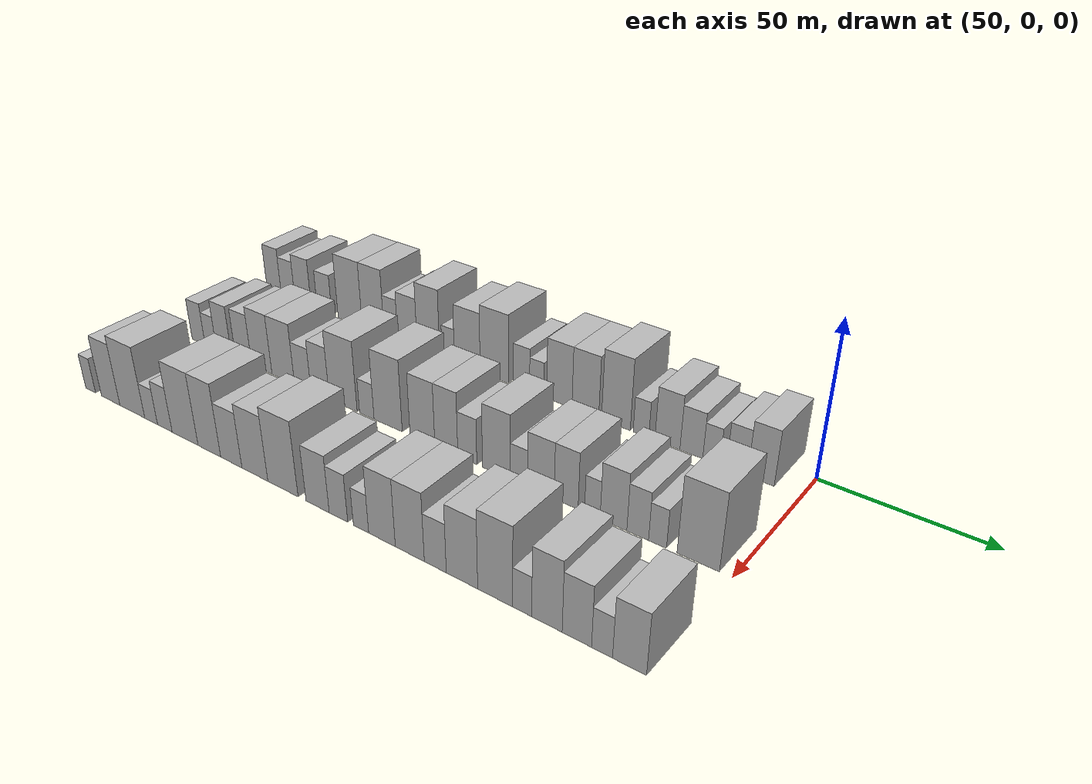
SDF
<sdf version="1.6">
 <world name="default">
  <model name="building_44">
   <static>1</static>
   <pose>50.0000 -202.3479 0 0.000000 0.000000 0.000000</pose>
   <link name="link">
    <pose>0 0 9.00 0 0 0</pose>
    <collision name="collision"><geometry><box><size>20.0000 7.2882 18.0000</size></box></geometry></collision>
    <visual name="visual">
     <cast_shadows>0</cast_shadows>
     <geometry><box><size>20.0000 7.2882 18.0000</size></box></geometry>
     <material>
      <script>
       <uri>model://HANNAS_wall/materials/scripts</uri>
       <uri>model://HANNAS_wall/materials/textures</uri>
       <name>vrc/HANNAS_wall</name>
      </script>
     </material>
    </visual>
   </link>
  </model>
  <model name="building_45">
   <static>1</static>
   <pose>50.0000 -195.2462 0 0.000000 0.000000 0.000000</pose>
   <link name="link">
    <pose>0 0 7.50 0 0 0</pose>
    <collision name="collision"><geometry><box><size>20.0000 6.9153 15.0000</size></box></geometry></collision>
    <visual name="visual">
     <cast_shadows>0</cast_shadows>
     <geometry><box><size>20.0000 6.9153 15.0000</size></box></geometry>
     <material>
      <script>
       <uri>model://HANNAS_wall/materials/scripts</uri>
       <uri>model://HANNAS_wall/materials/textures</uri>
       <name>vrc/HANNAS_wall</name>
      </script>
     </material>
    </visual>
   </link>
  </model>
  <model name="building_46">
   <static>1</static>
   <pose>50.0000 -187.7663 0 0.000000 0.000000 0.000000</pose>
   <link name="link">
    <pose>0 0 9.00 0 0 0</pose>
    <collision name="collision"><geometry><box><size>20.0000 8.0446 18.0000</size></box></geometry></collision>
    <visual name="visual">
     <cast_shadows>0</cast_shadows>
     <geometry><box><size>20.0000 8.0446 18.0000</size></box></geometry>
     <material>
      <script>
       <uri>model://HANNAS_wall/materials/scripts</uri>
       <uri>model://HANNAS_wall/materials/textures</uri>
       <name>vrc/HANNAS_wall</name>
      </script>
     </material>
    </visual>
   </link>
  </model>
  <model name="building_47">
   <static>1</static>
   <pose>50.0000 -177.2297 0 0.000000 0.000000 0.000000</pose>
   <link name="link">
    <pose>0 0 7.50 0 0 0</pose>
    <collision name="collision"><geometry><box><size>20.0000 7.0285 15.0000</size></box></geometry></collision>
    <visual name="visual">
     <cast_shadows>0</cast_shadows>
     <geometry><box><size>20.0000 7.0285 15.0000</size></box></geometry>
     <material>
      <script>
       <uri>model://HANNAS_wall/materials/scripts</uri>
       <uri>model://HANNAS_wall/materials/textures</uri>
       <name>vrc/HANNAS_wall</name>
      </script>
     </material>
    </visual>
   </link>
  </model>
  <model name="building_48">
   <static>1</static>
   <pose>50.0000 -165.0713 0 0.000000 0.000000 0.000000</pose>
   <link name="link">
    <pose>0 0 12.00 0 0 0</pose>
    <collision name="collision"><geometry><box><size>20.0000 11.2883 24.0000</size></box></geometry></collision>
    <visual name="visual">
     <cast_shadows>0</cast_shadows>
     <geometry><box><size>20.0000 11.2883 24.0000</size></box></geometry>
     <material>
      <script>
       <uri>model://HANNAS_wall/materials/scripts</uri>
       <uri>model://HANNAS_wall/materials/textures</uri>
       <name>vrc/HANNAS_wall</name>
      </script>
     </material>
    </visual>
   </link>
  </model>
  <model name="building_49">
   <static>1</static>
   <pose>50.0000 -154.4397 0 0.000000 0.000000 0.000000</pose>
   <link name="link">
    <pose>0 0 12.00 0 0 0</pose>
    <collision name="collision"><geometry><box><size>20.0000 9.9748 24.0000</size></box></geometry></collision>
    <visual name="visual">
     <cast_shadows>0</cast_shadows>
     <geometry><box><size>20.0000 9.9748 24.0000</size></box></geometry>
     <material>
      <script>
       <uri>model://HANNAS_wall/materials/scripts</uri>
       <uri>model://HANNAS_wall/materials/textures</uri>
       <name>vrc/HANNAS_wall</name>
      </script>
     </material>
    </visual>
   </link>
  </model>
  <model name="building_50">
   <static>1</static>
   <pose>50.0000 -146.4189 0 0.000000 0.000000 0.000000</pose>
   <link name="link">
    <pose>0 0 7.50 0 0 0</pose>
    <collision name="collision"><geometry><box><size>20.0000 6.0669 15.0000</size></box></geometry></collision>
    <visual name="visual">
     <cast_shadows>0</cast_shadows>
     <geometry><box><size>20.0000 6.0669 15.0000</size></box></geometry>
     <material>
      <script>
       <uri>model://HANNAS_wall/materials/scripts</uri>
       <uri>model://HANNAS_wall/materials/textures</uri>
       <name>vrc/HANNAS_wall</name>
      </script>
     </material>
    </visual>
   </link>
  </model>
  <model name="building_51">
   <static>1</static>
   <pose>50.0000 -139.1425 0 0.000000 0.000000 0.000000</pose>
   <link name="link">
    <pose>0 0 9.00 0 0 0</pose>
    <collision name="collision"><geometry><box><size>20.0000 8.4860 18.0000</size></box></geometry></collision>
    <visual name="visual">
     <cast_shadows>0</cast_shadows>
     <geometry><box><size>20.0000 8.4860 18.0000</size></box></geometry>
     <material>
      <script>
       <uri>model://HANNAS_wall/materials/scripts</uri>
       <uri>model://HANNAS_wall/materials/textures</uri>
       <name>vrc/HANNAS_wall</name>
      </script>
     </material>
    </visual>
   </link>
  </model>
  <model name="building_52">
   <static>1</static>
   <pose>50.0000 -130.0940 0 0.000000 0.000000 0.000000</pose>
   <link name="link">
    <pose>0 0 12.00 0 0 0</pose>
    <collision name="collision"><geometry><box><size>20.0000 9.6109 24.0000</size></box></geometry></collision>
    <visual name="visual">
     <cast_shadows>0</cast_shadows>
     <geometry><box><size>20.0000 9.6109 24.0000</size></box></geometry>
     <material>
      <script>
       <uri>model://HANNAS_wall/materials/scripts</uri>
       <uri>model://HANNAS_wall/materials/textures</uri>
       <name>vrc/HANNAS_wall</name>
      </script>
     </material>
    </visual>
   </link>
  </model>
  <model name="building_53">
   <static>1</static>
   <pose>50.0000 -121.7255 0 0.000000 0.000000 0.000000</pose>
   <link name="link">
    <pose>0 0 6.00 0 0 0</pose>
    <collision name="collision"><geometry><box><size>20.0000 5.1261 12.0000</size></box></geometry></collision>
    <visual name="visual">
     <cast_shadows>0</cast_shadows>
     <geometry><box><size>20.0000 5.1261 12.0000</size></box></geometry>
     <material>
      <script>
       <uri>model://HANNAS_wall/materials/scripts</uri>
       <uri>model://HANNAS_wall/materials/textures</uri>
       <name>vrc/HANNAS_wall</name>
      </script>
     </material>
    </visual>
   </link>
  </model>
  <model name="building_54">
   <static>1</static>
   <pose>50.0000 -113.9349 0 0.000000 0.000000 0.000000</pose>
   <link name="link">
    <pose>0 0 10.50 0 0 0</pose>
    <collision name="collision"><geometry><box><size>20.0000 10.4553 21.0000</size></box></geometry></collision>
    <visual name="visual">
     <cast_shadows>0</cast_shadows>
     <geometry><box><size>20.0000 10.4553 21.0000</size></box></geometry>
     <material>
      <script>
       <uri>model://HANNAS_wall/materials/scripts</uri>
       <uri>model://HANNAS_wall/materials/textures</uri>
       <name>vrc/HANNAS_wall</name>
      </script>
     </material>
    </visual>
   </link>
  </model>
  <model name="building_55">
   <static>1</static>
   <pose>50.0000 -103.1495 0 0.000000 0.000000 0.000000</pose>
   <link name="link">
    <pose>0 0 12.00 0 0 0</pose>
    <collision name="collision"><geometry><box><size>20.0000 11.1154 24.0000</size></box></geometry></collision>
    <visual name="visual">
     <cast_shadows>0</cast_shadows>
     <geometry><box><size>20.0000 11.1154 24.0000</size></box></geometry>
     <material>
      <script>
       <uri>model://HANNAS_wall/materials/scripts</uri>
       <uri>model://HANNAS_wall/materials/textures</uri>
       <name>vrc/HANNAS_wall</name>
      </script>
     </material>
    </visual>
   </link>
  </model>
  <model name="building_56">
   <static>1</static>
   <pose>50.0000 -92.5312 0 0.000000 0.000000 0.000000</pose>
   <link name="link">
    <pose>0 0 7.50 0 0 0</pose>
    <collision name="collision"><geometry><box><size>20.0000 6.1210 15.0000</size></box></geometry></collision>
    <visual name="visual">
     <cast_shadows>0</cast_shadows>
     <geometry><box><size>20.0000 6.1210 15.0000</size></box></geometry>
     <material>
      <script>
       <uri>model://HANNAS_wall/materials/scripts</uri>
       <uri>model://HANNAS_wall/materials/textures</uri>
       <name>vrc/HANNAS_wall</name>
      </script>
     </material>
    </visual>
   </link>
  </model>
  <model name="building_57">
   <static>1</static>
   <pose>50.0000 -86.7811 0 0.000000 0.000000 0.000000</pose>
   <link name="link">
    <pose>0 0 6.00 0 0 0</pose>
    <collision name="collision"><geometry><box><size>20.0000 5.3792 12.0000</size></box></geometry></collision>
    <visual name="visual">
     <cast_shadows>0</cast_shadows>
     <geometry><box><size>20.0000 5.3792 12.0000</size></box></geometry>
     <material>
      <script>
       <uri>model://HANNAS_wall/materials/scripts</uri>
       <uri>model://HANNAS_wall/materials/textures</uri>
       <name>vrc/HANNAS_wall</name>
      </script>
     </material>
    </visual>
   </link>
  </model>
  <model name="building_58">
   <static>1</static>
   <pose>50.0000 -78.4356 0 0.000000 0.000000 0.000000</pose>
   <link name="link">
    <pose>0 0 10.50 0 0 0</pose>
    <collision name="collision"><geometry><box><size>20.0000 9.3119 21.0000</size></box></geometry></collision>
    <visual name="visual">
     <cast_shadows>0</cast_shadows>
     <geometry><box><size>20.0000 9.3119 21.0000</size></box></geometry>
     <material>
      <script>
       <uri>model://HANNAS_wall/materials/scripts</uri>
       <uri>model://HANNAS_wall/materials/textures</uri>
       <name>vrc/HANNAS_wall</name>
      </script>
     </material>
    </visual>
   </link>
  </model>
  <model name="building_59">
   <static>1</static>
   <pose>50.0000 -69.0138 0 0.000000 0.000000 0.000000</pose>
   <link name="link">
    <pose>0 0 10.50 0 0 0</pose>
    <collision name="collision"><geometry><box><size>20.0000 9.5317 21.0000</size></box></geometry></collision>
    <visual name="visual">
     <cast_shadows>0</cast_shadows>
     <geometry><box><size>20.0000 9.5317 21.0000</size></box></geometry>
     <material>
      <script>
       <uri>model://HANNAS_wall/materials/scripts</uri>
       <uri>model://HANNAS_wall/materials/textures</uri>
       <name>vrc/HANNAS_wall</name>
      </script>
     </material>
    </visual>
   </link>
  </model>
  <model name="building_60">
   <static>1</static>
   <pose>50.0000 -58.2890 0 0.000000 0.000000 0.000000</pose>
   <link name="link">
    <pose>0 0 12.00 0 0 0</pose>
    <collision name="collision"><geometry><box><size>20.0000 9.9177 24.0000</size></box></geometry></collision>
    <visual name="visual">
     <cast_shadows>0</cast_shadows>
     <geometry><box><size>20.0000 9.9177 24.0000</size></box></geometry>
     <material>
      <script>
       <uri>model://HANNAS_wall/materials/scripts</uri>
       <uri>model://HANNAS_wall/materials/textures</uri>
       <name>vrc/HANNAS_wall</name>
      </script>
     </material>
    </visual>
   </link>
  </model>
  <model name="building_61">
   <static>1</static>
   <pose>50.0000 -49.7137 0 0.000000 0.000000 0.000000</pose>
   <link name="link">
    <pose>0 0 6.00 0 0 0</pose>
    <collision name="collision"><geometry><box><size>20.0000 5.2330 12.0000</size></box></geometry></collision>
    <visual name="visual">
     <cast_shadows>0</cast_shadows>
     <geometry><box><size>20.0000 5.2330 12.0000</size></box></geometry>
     <material>
      <script>
       <uri>model://HANNAS_wall/materials/scripts</uri>
       <uri>model://HANNAS_wall/materials/textures</uri>
       <name>vrc/HANNAS_wall</name>
      </script>
     </material>
    </visual>
   </link>
  </model>
  <model name="building_62">
   <static>1</static>
   <pose>50.0000 -40.9994 0 0.000000 0.000000 0.000000</pose>
   <link name="link">
    <pose>0 0 9.00 0 0 0</pose>
    <collision name="collision"><geometry><box><size>20.0000 8.1956 18.0000</size></box></geometry></collision>
    <visual name="visual">
     <cast_shadows>0</cast_shadows>
     <geometry><box><size>20.0000 8.1956 18.0000</size></box></geometry>
     <material>
      <script>
       <uri>model://HANNAS_wall/materials/scripts</uri>
       <uri>model://HANNAS_wall/materials/textures</uri>
       <name>vrc/HANNAS_wall</name>
      </script>
     </material>
    </visual>
   </link>
  </model>
  <model name="building_63">
   <static>1</static>
   <pose>50.0000 -33.2702 0 0.000000 0.000000 0.000000</pose>
   <link name="link">
    <pose>0 0 7.50 0 0 0</pose>
    <collision name="collision"><geometry><box><size>20.0000 7.2627 15.0000</size></box></geometry></collision>
    <visual name="visual">
     <cast_shadows>0</cast_shadows>
     <geometry><box><size>20.0000 7.2627 15.0000</size></box></geometry>
     <material>
      <script>
       <uri>model://HANNAS_wall/materials/scripts</uri>
       <uri>model://HANNAS_wall/materials/textures</uri>
       <name>vrc/HANNAS_wall</name>
      </script>
     </material>
    </visual>
   </link>
  </model>
  <model name="building_64">
   <static>1</static>
   <pose>50.0000 -26.9642 0 0.000000 0.000000 0.000000</pose>
   <link name="link">
    <pose>0 0 6.00 0 0 0</pose>
    <collision name="collision"><geometry><box><size>20.0000 5.3493 12.0000</size></box></geometry></collision>
    <visual name="visual">
     <cast_shadows>0</cast_shadows>
     <geometry><box><size>20.0000 5.3493 12.0000</size></box></geometry>
     <material>
      <script>
       <uri>model://HANNAS_wall/materials/scripts</uri>
       <uri>model://HANNAS_wall/materials/textures</uri>
       <name>vrc/HANNAS_wall</name>
      </script>
     </material>
    </visual>
   </link>
  </model>
  <model name="building_65">
   <static>1</static>
   <pose>50.0000 -19.0683 0 0.000000 0.000000 0.000000</pose>
   <link name="link">
    <pose>0 0 7.50 0 0 0</pose>
    <collision name="collision"><geometry><box><size>20.0000 6.4423 15.0000</size></box></geometry></collision>
    <visual name="visual">
     <cast_shadows>0</cast_shadows>
     <geometry><box><size>20.0000 6.4423 15.0000</size></box></geometry>
     <material>
      <script>
       <uri>model://HANNAS_wall/materials/scripts</uri>
       <uri>model://HANNAS_wall/materials/textures</uri>
       <name>vrc/HANNAS_wall</name>
      </script>
     </material>
    </visual>
   </link>
  </model>
  <model name="building_66">
   <static>1</static>
   <pose>50.0000 -11.8717 0 0.000000 0.000000 0.000000</pose>
   <link name="link">
    <pose>0 0 9.00 0 0 0</pose>
    <collision name="collision"><geometry><box><size>20.0000 7.9509 18.0000</size></box></geometry></collision>
    <visual name="visual">
     <cast_shadows>0</cast_shadows>
     <geometry><box><size>20.0000 7.9509 18.0000</size></box></geometry>
     <material>
      <script>
       <uri>model://HANNAS_wall/materials/scripts</uri>
       <uri>model://HANNAS_wall/materials/textures</uri>
       <name>vrc/HANNAS_wall</name>
      </script>
     </material>
    </visual>
   </link>
  </model>
  <model name="building_185">
   <static>1</static>
   <pose>90.0000 -195.8559 0 0.000000 0.000000 0.000000</pose>
   <link name="link">
    <pose>0 0 7.50 0 0 0</pose>
    <collision name="collision"><geometry><box><size>20.0000 6.4094 15.0000</size></box></geometry></collision>
    <visual name="visual">
     <cast_shadows>0</cast_shadows>
     <geometry><box><size>20.0000 6.4094 15.0000</size></box></geometry>
     <material>
      <script>
       <uri>model://HANNAS_wall/materials/scripts</uri>
       <uri>model://HANNAS_wall/materials/textures</uri>
       <name>vrc/HANNAS_wall</name>
      </script>
     </material>
    </visual>
   </link>
  </model>
  <model name="building_186">
   <static>1</static>
   <pose>90.0000 -189.8173 0 0.000000 0.000000 0.000000</pose>
   <link name="link">
    <pose>0 0 6.00 0 0 0</pose>
    <collision name="collision"><geometry><box><size>20.0000 5.6677 12.0000</size></box></geometry></collision>
    <visual name="visual">
     <cast_shadows>0</cast_shadows>
     <geometry><box><size>20.0000 5.6677 12.0000</size></box></geometry>
     <material>
      <script>
       <uri>model://HANNAS_wall/materials/scripts</uri>
       <uri>model://HANNAS_wall/materials/textures</uri>
       <name>vrc/HANNAS_wall</name>
      </script>
     </material>
    </visual>
   </link>
  </model>
  <model name="building_187">
   <static>1</static>
   <pose>90.0000 -183.3156 0 0.000000 0.000000 0.000000</pose>
   <link name="link">
    <pose>0 0 9.00 0 0 0</pose>
    <collision name="collision"><geometry><box><size>20.0000 7.3358 18.0000</size></box></geometry></collision>
    <visual name="visual">
     <cast_shadows>0</cast_shadows>
     <geometry><box><size>20.0000 7.3358 18.0000</size></box></geometry>
     <material>
      <script>
       <uri>model://HANNAS_wall/materials/scripts</uri>
       <uri>model://HANNAS_wall/materials/textures</uri>
       <name>vrc/HANNAS_wall</name>
      </script>
     </material>
    </visual>
   </link>
  </model>
  <model name="building_188">
   <static>1</static>
   <pose>90.0000 -173.8525 0 0.000000 0.000000 0.000000</pose>
   <link name="link">
    <pose>0 0 9.00 0 0 0</pose>
    <collision name="collision"><geometry><box><size>20.0000 7.5904 18.0000</size></box></geometry></collision>
    <visual name="visual">
     <cast_shadows>0</cast_shadows>
     <geometry><box><size>20.0000 7.5904 18.0000</size></box></geometry>
     <material>
      <script>
       <uri>model://HANNAS_wall/materials/scripts</uri>
       <uri>model://HANNAS_wall/materials/textures</uri>
       <name>vrc/HANNAS_wall</name>
      </script>
     </material>
    </visual>
   </link>
  </model>
  <model name="building_189">
   <static>1</static>
   <pose>90.0000 -165.4227 0 0.000000 0.000000 0.000000</pose>
   <link name="link">
    <pose>0 0 10.50 0 0 0</pose>
    <collision name="collision"><geometry><box><size>20.0000 9.2691 21.0000</size></box></geometry></collision>
    <visual name="visual">
     <cast_shadows>0</cast_shadows>
     <geometry><box><size>20.0000 9.2691 21.0000</size></box></geometry>
     <material>
      <script>
       <uri>model://HANNAS_wall/materials/scripts</uri>
       <uri>model://HANNAS_wall/materials/textures</uri>
       <name>vrc/HANNAS_wall</name>
      </script>
     </material>
    </visual>
   </link>
  </model>
  <model name="building_190">
   <static>1</static>
   <pose>90.0000 -155.7365 0 0.000000 0.000000 0.000000</pose>
   <link name="link">
    <pose>0 0 10.50 0 0 0</pose>
    <collision name="collision"><geometry><box><size>20.0000 10.1032 21.0000</size></box></geometry></collision>
    <visual name="visual">
     <cast_shadows>0</cast_shadows>
     <geometry><box><size>20.0000 10.1032 21.0000</size></box></geometry>
     <material>
      <script>
       <uri>model://HANNAS_wall/materials/scripts</uri>
       <uri>model://HANNAS_wall/materials/textures</uri>
       <name>vrc/HANNAS_wall</name>
      </script>
     </material>
    </visual>
   </link>
  </model>
  <model name="building_191">
   <static>1</static>
   <pose>90.0000 -147.0865 0 0.000000 0.000000 0.000000</pose>
   <link name="link">
    <pose>0 0 7.50 0 0 0</pose>
    <collision name="collision"><geometry><box><size>20.0000 7.1969 15.0000</size></box></geometry></collision>
    <visual name="visual">
     <cast_shadows>0</cast_shadows>
     <geometry><box><size>20.0000 7.1969 15.0000</size></box></geometry>
     <material>
      <script>
       <uri>model://HANNAS_wall/materials/scripts</uri>
       <uri>model://HANNAS_wall/materials/textures</uri>
       <name>vrc/HANNAS_wall</name>
      </script>
     </material>
    </visual>
   </link>
  </model>
  <model name="building_192">
   <static>1</static>
   <pose>90.0000 -139.5694 0 0.000000 0.000000 0.000000</pose>
   <link name="link">
    <pose>0 0 9.00 0 0 0</pose>
    <collision name="collision"><geometry><box><size>20.0000 7.8373 18.0000</size></box></geometry></collision>
    <visual name="visual">
     <cast_shadows>0</cast_shadows>
     <geometry><box><size>20.0000 7.8373 18.0000</size></box></geometry>
     <material>
      <script>
       <uri>model://HANNAS_wall/materials/scripts</uri>
       <uri>model://HANNAS_wall/materials/textures</uri>
       <name>vrc/HANNAS_wall</name>
      </script>
     </material>
    </visual>
   </link>
  </model>
  <model name="building_193">
   <static>1</static>
   <pose>90.0000 -129.8937 0 0.000000 0.000000 0.000000</pose>
   <link name="link">
    <pose>0 0 12.00 0 0 0</pose>
    <collision name="collision"><geometry><box><size>20.0000 11.5139 24.0000</size></box></geometry></collision>
    <visual name="visual">
     <cast_shadows>0</cast_shadows>
     <geometry><box><size>20.0000 11.5139 24.0000</size></box></geometry>
     <material>
      <script>
       <uri>model://HANNAS_wall/materials/scripts</uri>
       <uri>model://HANNAS_wall/materials/textures</uri>
       <name>vrc/HANNAS_wall</name>
      </script>
     </material>
    </visual>
   </link>
  </model>
  <model name="building_194">
   <static>1</static>
   <pose>90.0000 -120.2280 0 0.000000 0.000000 0.000000</pose>
   <link name="link">
    <pose>0 0 6.00 0 0 0</pose>
    <collision name="collision"><geometry><box><size>20.0000 5.8175 12.0000</size></box></geometry></collision>
    <visual name="visual">
     <cast_shadows>0</cast_shadows>
     <geometry><box><size>20.0000 5.8175 12.0000</size></box></geometry>
     <material>
      <script>
       <uri>model://HANNAS_wall/materials/scripts</uri>
       <uri>model://HANNAS_wall/materials/textures</uri>
       <name>vrc/HANNAS_wall</name>
      </script>
     </material>
    </visual>
   </link>
  </model>
  <model name="building_195">
   <static>1</static>
   <pose>90.0000 -111.7917 0 0.000000 0.000000 0.000000</pose>
   <link name="link">
    <pose>0 0 12.00 0 0 0</pose>
    <collision name="collision"><geometry><box><size>20.0000 11.0552 24.0000</size></box></geometry></collision>
    <visual name="visual">
     <cast_shadows>0</cast_shadows>
     <geometry><box><size>20.0000 11.0552 24.0000</size></box></geometry>
     <material>
      <script>
       <uri>model://HANNAS_wall/materials/scripts</uri>
       <uri>model://HANNAS_wall/materials/textures</uri>
       <name>vrc/HANNAS_wall</name>
      </script>
     </material>
    </visual>
   </link>
  </model>
  <model name="building_196">
   <static>1</static>
   <pose>90.0000 -98.5893 0 0.000000 0.000000 0.000000</pose>
   <link name="link">
    <pose>0 0 10.50 0 0 0</pose>
    <collision name="collision"><geometry><box><size>20.0000 9.3495 21.0000</size></box></geometry></collision>
    <visual name="visual">
     <cast_shadows>0</cast_shadows>
     <geometry><box><size>20.0000 9.3495 21.0000</size></box></geometry>
     <material>
      <script>
       <uri>model://HANNAS_wall/materials/scripts</uri>
       <uri>model://HANNAS_wall/materials/textures</uri>
       <name>vrc/HANNAS_wall</name>
      </script>
     </material>
    </visual>
   </link>
  </model>
  <model name="building_197">
   <static>1</static>
   <pose>90.0000 -89.7115 0 0.000000 0.000000 0.000000</pose>
   <link name="link">
    <pose>0 0 10.50 0 0 0</pose>
    <collision name="collision"><geometry><box><size>20.0000 8.4060 21.0000</size></box></geometry></collision>
    <visual name="visual">
     <cast_shadows>0</cast_shadows>
     <geometry><box><size>20.0000 8.4060 21.0000</size></box></geometry>
     <material>
      <script>
       <uri>model://HANNAS_wall/materials/scripts</uri>
       <uri>model://HANNAS_wall/materials/textures</uri>
       <name>vrc/HANNAS_wall</name>
      </script>
     </material>
    </visual>
   </link>
  </model>
  <model name="building_198">
   <static>1</static>
   <pose>90.0000 -82.1200 0 0.000000 0.000000 0.000000</pose>
   <link name="link">
    <pose>0 0 7.50 0 0 0</pose>
    <collision name="collision"><geometry><box><size>20.0000 6.7771 15.0000</size></box></geometry></collision>
    <visual name="visual">
     <cast_shadows>0</cast_shadows>
     <geometry><box><size>20.0000 6.7771 15.0000</size></box></geometry>
     <material>
      <script>
       <uri>model://HANNAS_wall/materials/scripts</uri>
       <uri>model://HANNAS_wall/materials/textures</uri>
       <name>vrc/HANNAS_wall</name>
      </script>
     </material>
    </visual>
   </link>
  </model>
  <model name="building_199">
   <static>1</static>
   <pose>90.0000 -71.8998 0 0.000000 0.000000 0.000000</pose>
   <link name="link">
    <pose>0 0 10.50 0 0 0</pose>
    <collision name="collision"><geometry><box><size>20.0000 9.6631 21.0000</size></box></geometry></collision>
    <visual name="visual">
     <cast_shadows>0</cast_shadows>
     <geometry><box><size>20.0000 9.6631 21.0000</size></box></geometry>
     <material>
      <script>
       <uri>model://HANNAS_wall/materials/scripts</uri>
       <uri>model://HANNAS_wall/materials/textures</uri>
       <name>vrc/HANNAS_wall</name>
      </script>
     </material>
    </visual>
   </link>
  </model>
  <model name="building_200">
   <static>1</static>
   <pose>90.0000 -64.2052 0 0.000000 0.000000 0.000000</pose>
   <link name="link">
    <pose>0 0 6.00 0 0 0</pose>
    <collision name="collision"><geometry><box><size>20.0000 5.7262 12.0000</size></box></geometry></collision>
    <visual name="visual">
     <cast_shadows>0</cast_shadows>
     <geometry><box><size>20.0000 5.7262 12.0000</size></box></geometry>
     <material>
      <script>
       <uri>model://HANNAS_wall/materials/scripts</uri>
       <uri>model://HANNAS_wall/materials/textures</uri>
       <name>vrc/HANNAS_wall</name>
      </script>
     </material>
    </visual>
   </link>
  </model>
  <model name="building_201">
   <static>1</static>
   <pose>90.0000 -56.9753 0 0.000000 0.000000 0.000000</pose>
   <link name="link">
    <pose>0 0 9.00 0 0 0</pose>
    <collision name="collision"><geometry><box><size>20.0000 8.7336 18.0000</size></box></geometry></collision>
    <visual name="visual">
     <cast_shadows>0</cast_shadows>
     <geometry><box><size>20.0000 8.7336 18.0000</size></box></geometry>
     <material>
      <script>
       <uri>model://HANNAS_wall/materials/scripts</uri>
       <uri>model://HANNAS_wall/materials/textures</uri>
       <name>vrc/HANNAS_wall</name>
      </script>
     </material>
    </visual>
   </link>
  </model>
  <model name="building_202">
   <static>1</static>
   <pose>90.0000 -48.7742 0 0.000000 0.000000 0.000000</pose>
   <link name="link">
    <pose>0 0 9.00 0 0 0</pose>
    <collision name="collision"><geometry><box><size>20.0000 7.6685 18.0000</size></box></geometry></collision>
    <visual name="visual">
     <cast_shadows>0</cast_shadows>
     <geometry><box><size>20.0000 7.6685 18.0000</size></box></geometry>
     <material>
      <script>
       <uri>model://HANNAS_wall/materials/scripts</uri>
       <uri>model://HANNAS_wall/materials/textures</uri>
       <name>vrc/HANNAS_wall</name>
      </script>
     </material>
    </visual>
   </link>
  </model>
  <model name="building_203">
   <static>1</static>
   <pose>90.0000 -40.5133 0 0.000000 0.000000 0.000000</pose>
   <link name="link">
    <pose>0 0 6.00 0 0 0</pose>
    <collision name="collision"><geometry><box><size>20.0000 4.8533 12.0000</size></box></geometry></collision>
    <visual name="visual">
     <cast_shadows>0</cast_shadows>
     <geometry><box><size>20.0000 4.8533 12.0000</size></box></geometry>
     <material>
      <script>
       <uri>model://HANNAS_wall/materials/scripts</uri>
       <uri>model://HANNAS_wall/materials/textures</uri>
       <name>vrc/HANNAS_wall</name>
      </script>
     </material>
    </visual>
   </link>
  </model>
  <model name="building_204">
   <static>1</static>
   <pose>90.0000 -34.0254 0 0.000000 0.000000 0.000000</pose>
   <link name="link">
    <pose>0 0 9.00 0 0 0</pose>
    <collision name="collision"><geometry><box><size>20.0000 8.1226 18.0000</size></box></geometry></collision>
    <visual name="visual">
     <cast_shadows>0</cast_shadows>
     <geometry><box><size>20.0000 8.1226 18.0000</size></box></geometry>
     <material>
      <script>
       <uri>model://HANNAS_wall/materials/scripts</uri>
       <uri>model://HANNAS_wall/materials/textures</uri>
       <name>vrc/HANNAS_wall</name>
      </script>
     </material>
    </visual>
   </link>
  </model>
  <model name="building_205">
   <static>1</static>
   <pose>90.0000 -26.7587 0 0.000000 0.000000 0.000000</pose>
   <link name="link">
    <pose>0 0 7.50 0 0 0</pose>
    <collision name="collision"><geometry><box><size>20.0000 6.4108 15.0000</size></box></geometry></collision>
    <visual name="visual">
     <cast_shadows>0</cast_shadows>
     <geometry><box><size>20.0000 6.4108 15.0000</size></box></geometry>
     <material>
      <script>
       <uri>model://HANNAS_wall/materials/scripts</uri>
       <uri>model://HANNAS_wall/materials/textures</uri>
       <name>vrc/HANNAS_wall</name>
      </script>
     </material>
    </visual>
   </link>
  </model>
  <model name="building_206">
   <static>1</static>
   <pose>90.0000 -20.9501 0 0.000000 0.000000 0.000000</pose>
   <link name="link">
    <pose>0 0 6.00 0 0 0</pose>
    <collision name="collision"><geometry><box><size>20.0000 5.2064 12.0000</size></box></geometry></collision>
    <visual name="visual">
     <cast_shadows>0</cast_shadows>
     <geometry><box><size>20.0000 5.2064 12.0000</size></box></geometry>
     <material>
      <script>
       <uri>model://HANNAS_wall/materials/scripts</uri>
       <uri>model://HANNAS_wall/materials/textures</uri>
       <name>vrc/HANNAS_wall</name>
      </script>
     </material>
    </visual>
   </link>
  </model>
  <model name="building_207">
   <static>1</static>
   <pose>90.0000 -9.4413 0 0.000000 0.000000 0.000000</pose>
   <link name="link">
    <pose>0 0 12.00 0 0 0</pose>
    <collision name="collision"><geometry><box><size>20.0000 11.8111 24.0000</size></box></geometry></collision>
    <visual name="visual">
     <cast_shadows>0</cast_shadows>
     <geometry><box><size>20.0000 11.8111 24.0000</size></box></geometry>
     <material>
      <script>
       <uri>model://HANNAS_wall/materials/scripts</uri>
       <uri>model://HANNAS_wall/materials/textures</uri>
       <name>vrc/HANNAS_wall</name>
      </script>
     </material>
    </visual>
   </link>
  </model>
  <model name="building_323">
   <static>1</static>
   <pose>130.0000 -198.5593 0 0.000000 0.000000 0.000000</pose>
   <link name="link">
    <pose>0 0 6.00 0 0 0</pose>
    <collision name="collision"><geometry><box><size>20.0000 4.9016 12.0000</size></box></geometry></collision>
    <visual name="visual">
     <cast_shadows>0</cast_shadows>
     <geometry><box><size>20.0000 4.9016 12.0000</size></box></geometry>
     <material>
      <script>
       <uri>model://HANNAS_wall/materials/scripts</uri>
       <uri>model://HANNAS_wall/materials/textures</uri>
       <name>vrc/HANNAS_wall</name>
      </script>
     </material>
    </visual>
   </link>
  </model>
  <model name="building_324">
   <static>1</static>
   <pose>130.0000 -188.6120 0 0.000000 0.000000 0.000000</pose>
   <link name="link">
    <pose>0 0 10.50 0 0 0</pose>
    <collision name="collision"><geometry><box><size>20.0000 8.9930 21.0000</size></box></geometry></collision>
    <visual name="visual">
     <cast_shadows>0</cast_shadows>
     <geometry><box><size>20.0000 8.9930 21.0000</size></box></geometry>
     <material>
      <script>
       <uri>model://HANNAS_wall/materials/scripts</uri>
       <uri>model://HANNAS_wall/materials/textures</uri>
       <name>vrc/HANNAS_wall</name>
      </script>
     </material>
    </visual>
   </link>
  </model>
  <model name="building_325">
   <static>1</static>
   <pose>130.0000 -178.2309 0 0.000000 0.000000 0.000000</pose>
   <link name="link">
    <pose>0 0 12.00 0 0 0</pose>
    <collision name="collision"><geometry><box><size>20.0000 11.7692 24.0000</size></box></geometry></collision>
    <visual name="visual">
     <cast_shadows>0</cast_shadows>
     <geometry><box><size>20.0000 11.7692 24.0000</size></box></geometry>
     <material>
      <script>
       <uri>model://HANNAS_wall/materials/scripts</uri>
       <uri>model://HANNAS_wall/materials/textures</uri>
       <name>vrc/HANNAS_wall</name>
      </script>
     </material>
    </visual>
   </link>
  </model>
  <model name="building_326">
   <static>1</static>
   <pose>130.0000 -169.3851 0 0.000000 0.000000 0.000000</pose>
   <link name="link">
    <pose>0 0 6.00 0 0 0</pose>
    <collision name="collision"><geometry><box><size>20.0000 5.9225 12.0000</size></box></geometry></collision>
    <visual name="visual">
     <cast_shadows>0</cast_shadows>
     <geometry><box><size>20.0000 5.9225 12.0000</size></box></geometry>
     <material>
      <script>
       <uri>model://HANNAS_wall/materials/scripts</uri>
       <uri>model://HANNAS_wall/materials/textures</uri>
       <name>vrc/HANNAS_wall</name>
      </script>
     </material>
    </visual>
   </link>
  </model>
  <model name="building_327">
   <static>1</static>
   <pose>130.0000 -163.1254 0 0.000000 0.000000 0.000000</pose>
   <link name="link">
    <pose>0 0 7.50 0 0 0</pose>
    <collision name="collision"><geometry><box><size>20.0000 6.5968 15.0000</size></box></geometry></collision>
    <visual name="visual">
     <cast_shadows>0</cast_shadows>
     <geometry><box><size>20.0000 6.5968 15.0000</size></box></geometry>
     <material>
      <script>
       <uri>model://HANNAS_wall/materials/scripts</uri>
       <uri>model://HANNAS_wall/materials/textures</uri>
       <name>vrc/HANNAS_wall</name>
      </script>
     </material>
    </visual>
   </link>
  </model>
  <model name="building_328">
   <static>1</static>
   <pose>130.0000 -154.1290 0 0.000000 0.000000 0.000000</pose>
   <link name="link">
    <pose>0 0 12.00 0 0 0</pose>
    <collision name="collision"><geometry><box><size>20.0000 11.3960 24.0000</size></box></geometry></collision>
    <visual name="visual">
     <cast_shadows>0</cast_shadows>
     <geometry><box><size>20.0000 11.3960 24.0000</size></box></geometry>
     <material>
      <script>
       <uri>model://HANNAS_wall/materials/scripts</uri>
       <uri>model://HANNAS_wall/materials/textures</uri>
       <name>vrc/HANNAS_wall</name>
      </script>
     </material>
    </visual>
   </link>
  </model>
  <model name="building_329">
   <static>1</static>
   <pose>130.0000 -143.6059 0 0.000000 0.000000 0.000000</pose>
   <link name="link">
    <pose>0 0 12.00 0 0 0</pose>
    <collision name="collision"><geometry><box><size>20.0000 9.6503 24.0000</size></box></geometry></collision>
    <visual name="visual">
     <cast_shadows>0</cast_shadows>
     <geometry><box><size>20.0000 9.6503 24.0000</size></box></geometry>
     <material>
      <script>
       <uri>model://HANNAS_wall/materials/scripts</uri>
       <uri>model://HANNAS_wall/materials/textures</uri>
       <name>vrc/HANNAS_wall</name>
      </script>
     </material>
    </visual>
   </link>
  </model>
  <model name="building_330">
   <static>1</static>
   <pose>130.0000 -134.3958 0 0.000000 0.000000 0.000000</pose>
   <link name="link">
    <pose>0 0 9.00 0 0 0</pose>
    <collision name="collision"><geometry><box><size>20.0000 8.7698 18.0000</size></box></geometry></collision>
    <visual name="visual">
     <cast_shadows>0</cast_shadows>
     <geometry><box><size>20.0000 8.7698 18.0000</size></box></geometry>
     <material>
      <script>
       <uri>model://HANNAS_wall/materials/scripts</uri>
       <uri>model://HANNAS_wall/materials/textures</uri>
       <name>vrc/HANNAS_wall</name>
      </script>
     </material>
    </visual>
   </link>
  </model>
  <model name="building_331">
   <static>1</static>
   <pose>130.0000 -124.8278 0 0.000000 0.000000 0.000000</pose>
   <link name="link">
    <pose>0 0 10.50 0 0 0</pose>
    <collision name="collision"><geometry><box><size>20.0000 10.3663 21.0000</size></box></geometry></collision>
    <visual name="visual">
     <cast_shadows>0</cast_shadows>
     <geometry><box><size>20.0000 10.3663 21.0000</size></box></geometry>
     <material>
      <script>
       <uri>model://HANNAS_wall/materials/scripts</uri>
       <uri>model://HANNAS_wall/materials/textures</uri>
       <name>vrc/HANNAS_wall</name>
      </script>
     </material>
    </visual>
   </link>
  </model>
  <model name="building_332">
   <static>1</static>
   <pose>130.0000 -113.8244 0 0.000000 0.000000 0.000000</pose>
   <link name="link">
    <pose>0 0 12.00 0 0 0</pose>
    <collision name="collision"><geometry><box><size>20.0000 11.6403 24.0000</size></box></geometry></collision>
    <visual name="visual">
     <cast_shadows>0</cast_shadows>
     <geometry><box><size>20.0000 11.6403 24.0000</size></box></geometry>
     <material>
      <script>
       <uri>model://HANNAS_wall/materials/scripts</uri>
       <uri>model://HANNAS_wall/materials/textures</uri>
       <name>vrc/HANNAS_wall</name>
      </script>
     </material>
    </visual>
   </link>
  </model>
  <model name="building_333">
   <static>1</static>
   <pose>130.0000 -100.7300 0 0.000000 0.000000 0.000000</pose>
   <link name="link">
    <pose>0 0 9.00 0 0 0</pose>
    <collision name="collision"><geometry><box><size>20.0000 8.5486 18.0000</size></box></geometry></collision>
    <visual name="visual">
     <cast_shadows>0</cast_shadows>
     <geometry><box><size>20.0000 8.5486 18.0000</size></box></geometry>
     <material>
      <script>
       <uri>model://HANNAS_wall/materials/scripts</uri>
       <uri>model://HANNAS_wall/materials/textures</uri>
       <name>vrc/HANNAS_wall</name>
      </script>
     </material>
    </visual>
   </link>
  </model>
  <model name="building_334">
   <static>1</static>
   <pose>130.0000 -93.1332 0 0.000000 0.000000 0.000000</pose>
   <link name="link">
    <pose>0 0 7.50 0 0 0</pose>
    <collision name="collision"><geometry><box><size>20.0000 6.6448 15.0000</size></box></geometry></collision>
    <visual name="visual">
     <cast_shadows>0</cast_shadows>
     <geometry><box><size>20.0000 6.6448 15.0000</size></box></geometry>
     <material>
      <script>
       <uri>model://HANNAS_wall/materials/scripts</uri>
       <uri>model://HANNAS_wall/materials/textures</uri>
       <name>vrc/HANNAS_wall</name>
      </script>
     </material>
    </visual>
   </link>
  </model>
  <model name="building_335">
   <static>1</static>
   <pose>130.0000 -85.1421 0 0.000000 0.000000 0.000000</pose>
   <link name="link">
    <pose>0 0 6.00 0 0 0</pose>
    <collision name="collision"><geometry><box><size>20.0000 5.3374 12.0000</size></box></geometry></collision>
    <visual name="visual">
     <cast_shadows>0</cast_shadows>
     <geometry><box><size>20.0000 5.3374 12.0000</size></box></geometry>
     <material>
      <script>
       <uri>model://HANNAS_wall/materials/scripts</uri>
       <uri>model://HANNAS_wall/materials/textures</uri>
       <name>vrc/HANNAS_wall</name>
      </script>
     </material>
    </visual>
   </link>
  </model>
  <model name="building_336">
   <static>1</static>
   <pose>130.0000 -77.9403 0 0.000000 0.000000 0.000000</pose>
   <link name="link">
    <pose>0 0 10.50 0 0 0</pose>
    <collision name="collision"><geometry><box><size>20.0000 9.0662 21.0000</size></box></geometry></collision>
    <visual name="visual">
     <cast_shadows>0</cast_shadows>
     <geometry><box><size>20.0000 9.0662 21.0000</size></box></geometry>
     <material>
      <script>
       <uri>model://HANNAS_wall/materials/scripts</uri>
       <uri>model://HANNAS_wall/materials/textures</uri>
       <name>vrc/HANNAS_wall</name>
      </script>
     </material>
    </visual>
   </link>
  </model>
  <model name="building_337">
   <static>1</static>
   <pose>130.0000 -68.6315 0 0.000000 0.000000 0.000000</pose>
   <link name="link">
    <pose>0 0 10.50 0 0 0</pose>
    <collision name="collision"><geometry><box><size>20.0000 9.5514 21.0000</size></box></geometry></collision>
    <visual name="visual">
     <cast_shadows>0</cast_shadows>
     <geometry><box><size>20.0000 9.5514 21.0000</size></box></geometry>
     <material>
      <script>
       <uri>model://HANNAS_wall/materials/scripts</uri>
       <uri>model://HANNAS_wall/materials/textures</uri>
       <name>vrc/HANNAS_wall</name>
      </script>
     </material>
    </visual>
   </link>
  </model>
  <model name="building_338">
   <static>1</static>
   <pose>130.0000 -60.3538 0 0.000000 0.000000 0.000000</pose>
   <link name="link">
    <pose>0 0 7.50 0 0 0</pose>
    <collision name="collision"><geometry><box><size>20.0000 7.0039 15.0000</size></box></geometry></collision>
    <visual name="visual">
     <cast_shadows>0</cast_shadows>
     <geometry><box><size>20.0000 7.0039 15.0000</size></box></geometry>
     <material>
      <script>
       <uri>model://HANNAS_wall/materials/scripts</uri>
       <uri>model://HANNAS_wall/materials/textures</uri>
       <name>vrc/HANNAS_wall</name>
      </script>
     </material>
    </visual>
   </link>
  </model>
  <model name="building_339">
   <static>1</static>
   <pose>130.0000 -52.0006 0 0.000000 0.000000 0.000000</pose>
   <link name="link">
    <pose>0 0 10.50 0 0 0</pose>
    <collision name="collision"><geometry><box><size>20.0000 9.7025 21.0000</size></box></geometry></collision>
    <visual name="visual">
     <cast_shadows>0</cast_shadows>
     <geometry><box><size>20.0000 9.7025 21.0000</size></box></geometry>
     <material>
      <script>
       <uri>model://HANNAS_wall/materials/scripts</uri>
       <uri>model://HANNAS_wall/materials/textures</uri>
       <name>vrc/HANNAS_wall</name>
      </script>
     </material>
    </visual>
   </link>
  </model>
  <model name="building_340">
   <static>1</static>
   <pose>130.0000 -41.9264 0 0.000000 0.000000 0.000000</pose>
   <link name="link">
    <pose>0 0 12.00 0 0 0</pose>
    <collision name="collision"><geometry><box><size>20.0000 10.4460 24.0000</size></box></geometry></collision>
    <visual name="visual">
     <cast_shadows>0</cast_shadows>
     <geometry><box><size>20.0000 10.4460 24.0000</size></box></geometry>
     <material>
      <script>
       <uri>model://HANNAS_wall/materials/scripts</uri>
       <uri>model://HANNAS_wall/materials/textures</uri>
       <name>vrc/HANNAS_wall</name>
      </script>
     </material>
    </visual>
   </link>
  </model>
  <model name="building_341">
   <static>1</static>
   <pose>130.0000 -33.9825 0 0.000000 0.000000 0.000000</pose>
   <link name="link">
    <pose>0 0 6.00 0 0 0</pose>
    <collision name="collision"><geometry><box><size>20.0000 5.4418 12.0000</size></box></geometry></collision>
    <visual name="visual">
     <cast_shadows>0</cast_shadows>
     <geometry><box><size>20.0000 5.4418 12.0000</size></box></geometry>
     <material>
      <script>
       <uri>model://HANNAS_wall/materials/scripts</uri>
       <uri>model://HANNAS_wall/materials/textures</uri>
       <name>vrc/HANNAS_wall</name>
      </script>
     </material>
    </visual>
   </link>
  </model>
  <model name="building_342">
   <static>1</static>
   <pose>130.0000 -26.9742 0 0.000000 0.000000 0.000000</pose>
   <link name="link">
    <pose>0 0 10.50 0 0 0</pose>
    <collision name="collision"><geometry><box><size>20.0000 8.5747 21.0000</size></box></geometry></collision>
    <visual name="visual">
     <cast_shadows>0</cast_shadows>
     <geometry><box><size>20.0000 8.5747 21.0000</size></box></geometry>
     <material>
      <script>
       <uri>model://HANNAS_wall/materials/scripts</uri>
       <uri>model://HANNAS_wall/materials/textures</uri>
       <name>vrc/HANNAS_wall</name>
      </script>
     </material>
    </visual>
   </link>
  </model>
  <model name="building_343">
   <static>1</static>
   <pose>130.0000 -18.7017 0 0.000000 0.000000 0.000000</pose>
   <link name="link">
    <pose>0 0 9.00 0 0 0</pose>
    <collision name="collision"><geometry><box><size>20.0000 7.9704 18.0000</size></box></geometry></collision>
    <visual name="visual">
     <cast_shadows>0</cast_shadows>
     <geometry><box><size>20.0000 7.9704 18.0000</size></box></geometry>
     <material>
      <script>
       <uri>model://HANNAS_wall/materials/scripts</uri>
       <uri>model://HANNAS_wall/materials/textures</uri>
       <name>vrc/HANNAS_wall</name>
      </script>
     </material>
    </visual>
   </link>
  </model>
  <model name="building_344">
   <static>1</static>
   <pose>130.0000 -11.9334 0 0.000000 0.000000 0.000000</pose>
   <link name="link">
    <pose>0 0 6.00 0 0 0</pose>
    <collision name="collision"><geometry><box><size>20.0000 5.5663 12.0000</size></box></geometry></collision>
    <visual name="visual">
     <cast_shadows>0</cast_shadows>
     <geometry><box><size>20.0000 5.5663 12.0000</size></box></geometry>
     <material>
      <script>
       <uri>model://HANNAS_wall/materials/scripts</uri>
       <uri>model://HANNAS_wall/materials/textures</uri>
       <name>vrc/HANNAS_wall</name>
      </script>
     </material>
    </visual>
   </link>
  </model>
  <model name="building_345">
   <static>1</static>
   <pose>130.0000 -4.7817 0 0.000000 0.000000 0.000000</pose>
   <link name="link">
    <pose>0 0 9.00 0 0 0</pose>
    <collision name="collision"><geometry><box><size>20.0000 8.7371 18.0000</size></box></geometry></collision>
    <visual name="visual">
     <cast_shadows>0</cast_shadows>
     <geometry><box><size>20.0000 8.7371 18.0000</size></box></geometry>
     <material>
      <script>
       <uri>model://HANNAS_wall/materials/scripts</uri>
       <uri>model://HANNAS_wall/materials/textures</uri>
       <name>vrc/HANNAS_wall</name>
      </script>
     </material>
    </visual>
   </link>
  </model>
 </world>
</sdf>
